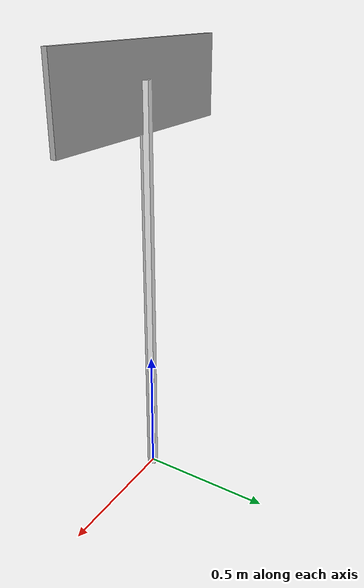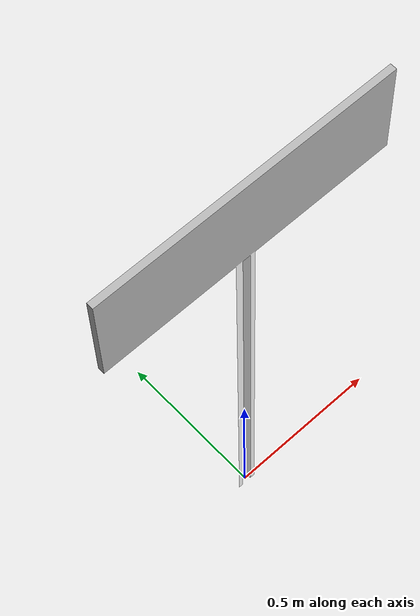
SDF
<?xml version="1.0" ?>
<sdf version="1.6">
  <model name="one_way_right">
    <pose>0 0 0 0 0 0</pose>
    <static>true</static>
    <link name="link">
      <inertial>
        <pose>0 0 0 0 0 0</pose>
        <mass>1</mass>
        <inertia>
          <ixx>1</ixx>
          <iyy>1</iyy>
          <izz>1</izz>
          <ixy>0</ixy>
          <ixz>0</ixz>
        </inertia>
      </inertial>
      <visual name="visual">
        <geometry>
          <mesh>
            <uri>model://one_way_right/meshes/one_way_right.dae</uri>
          </mesh>
        </geometry>
      </visual>
      <collision name="collision">
        <geometry>
          <mesh>
            <uri>model://one_way_right/meshes/one_way_right.dae</uri>
          </mesh>
        </geometry>
      </collision>
    </link>
  </model>
</sdf>
